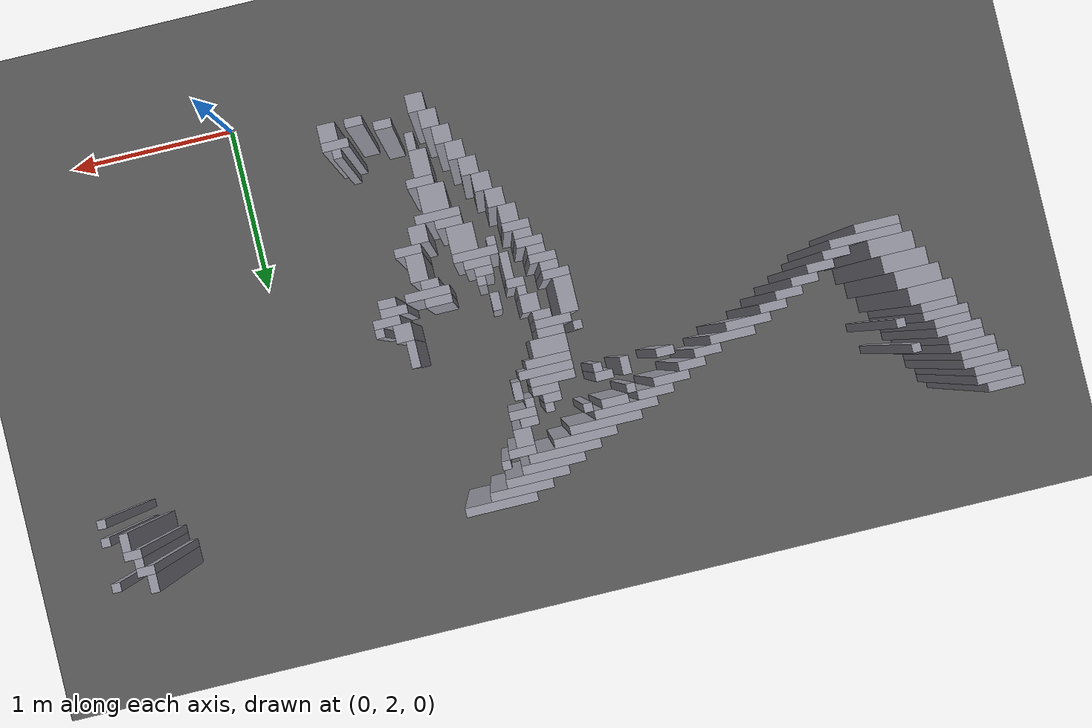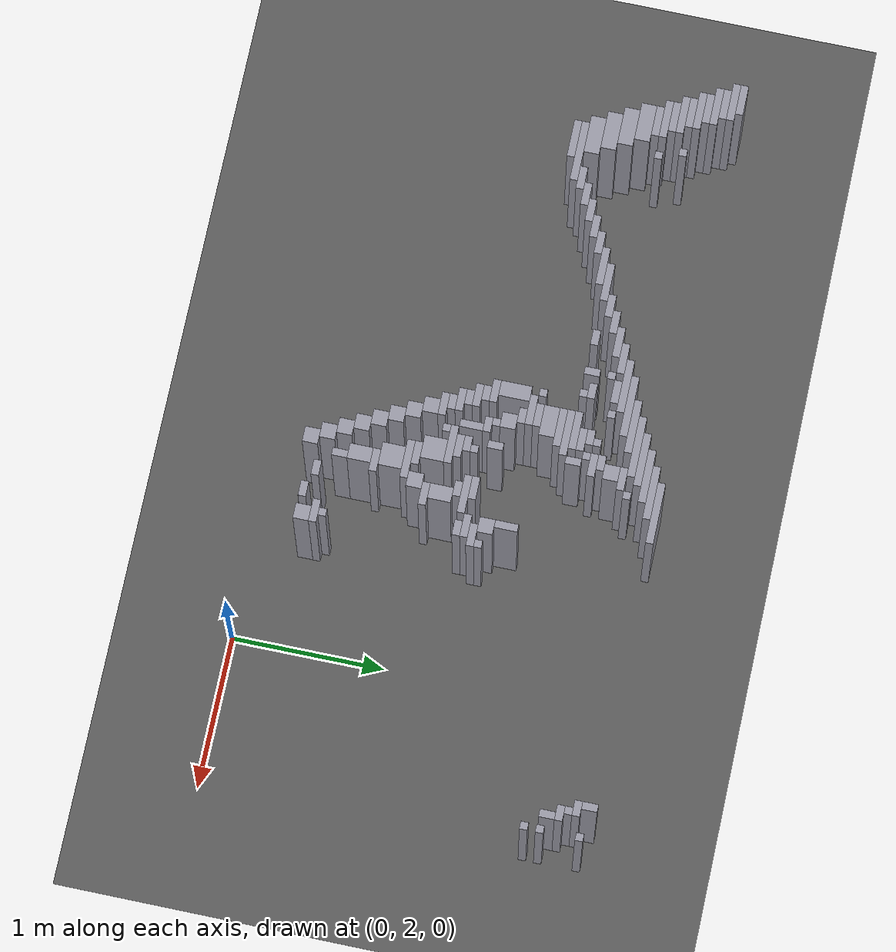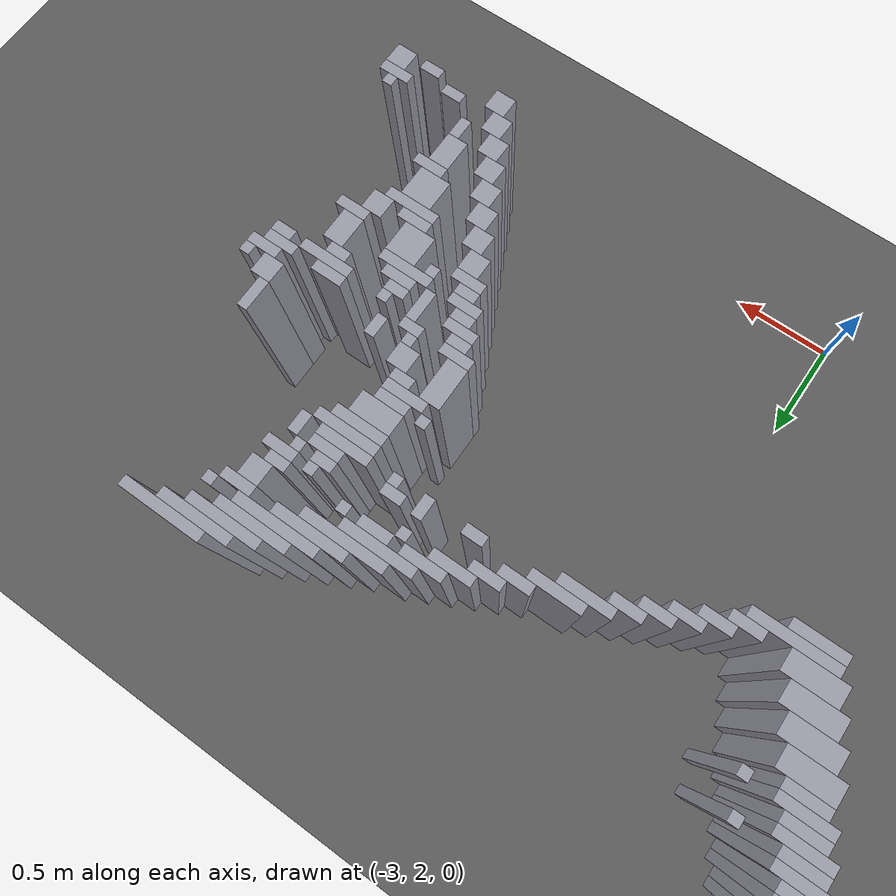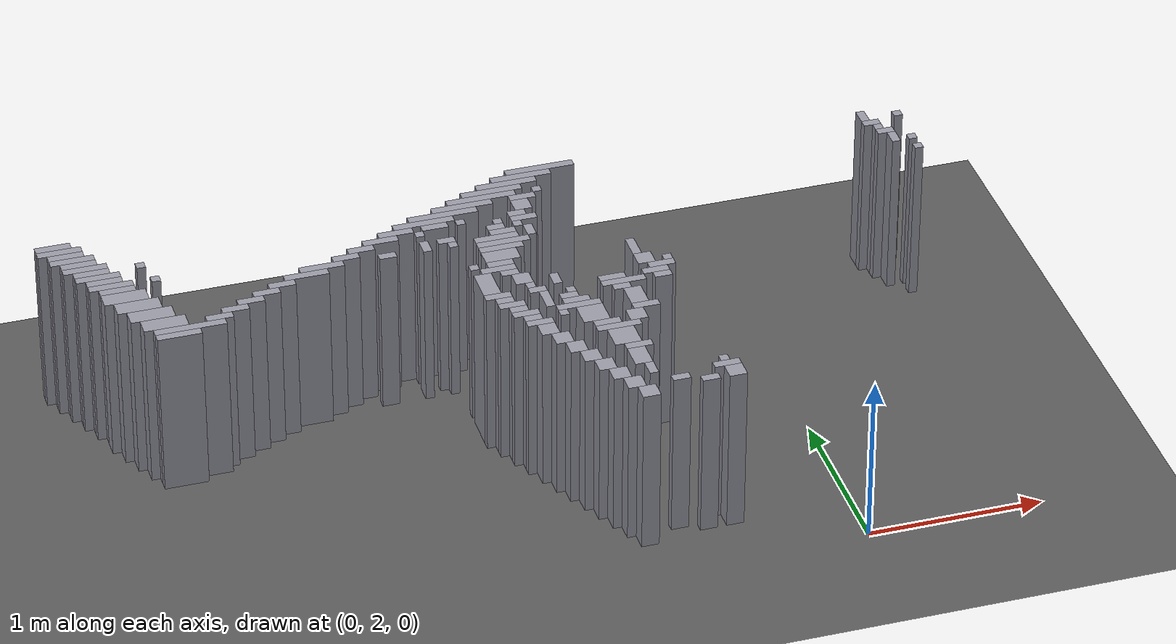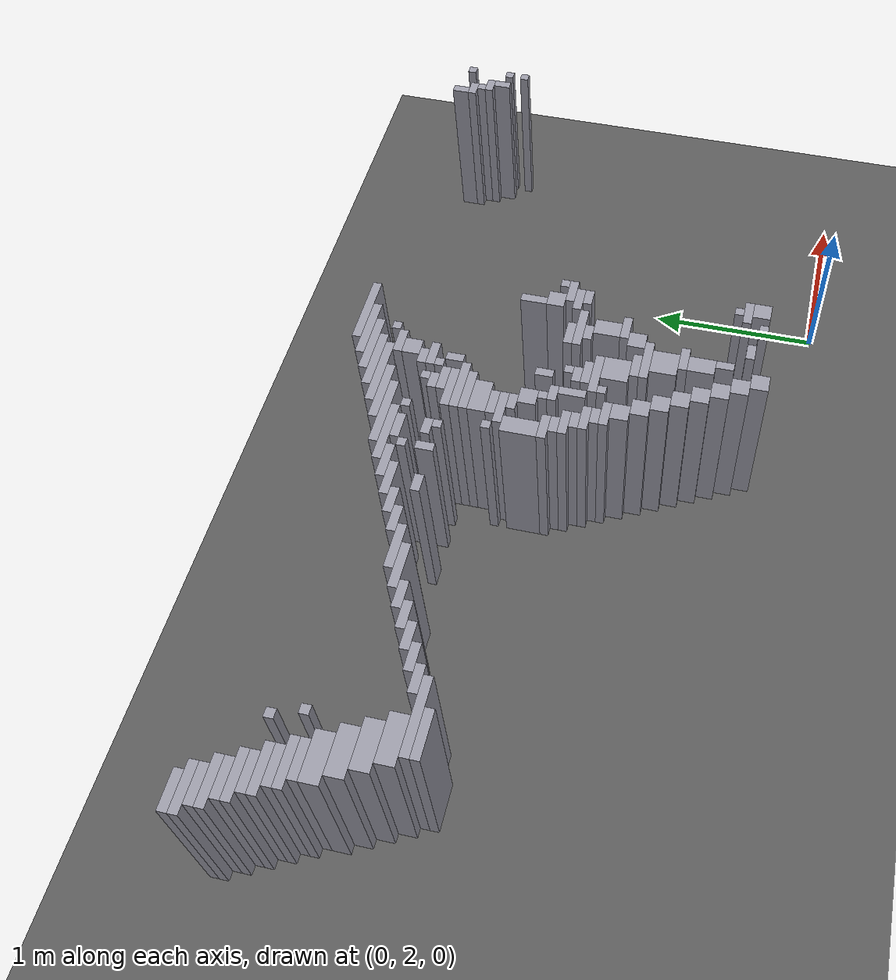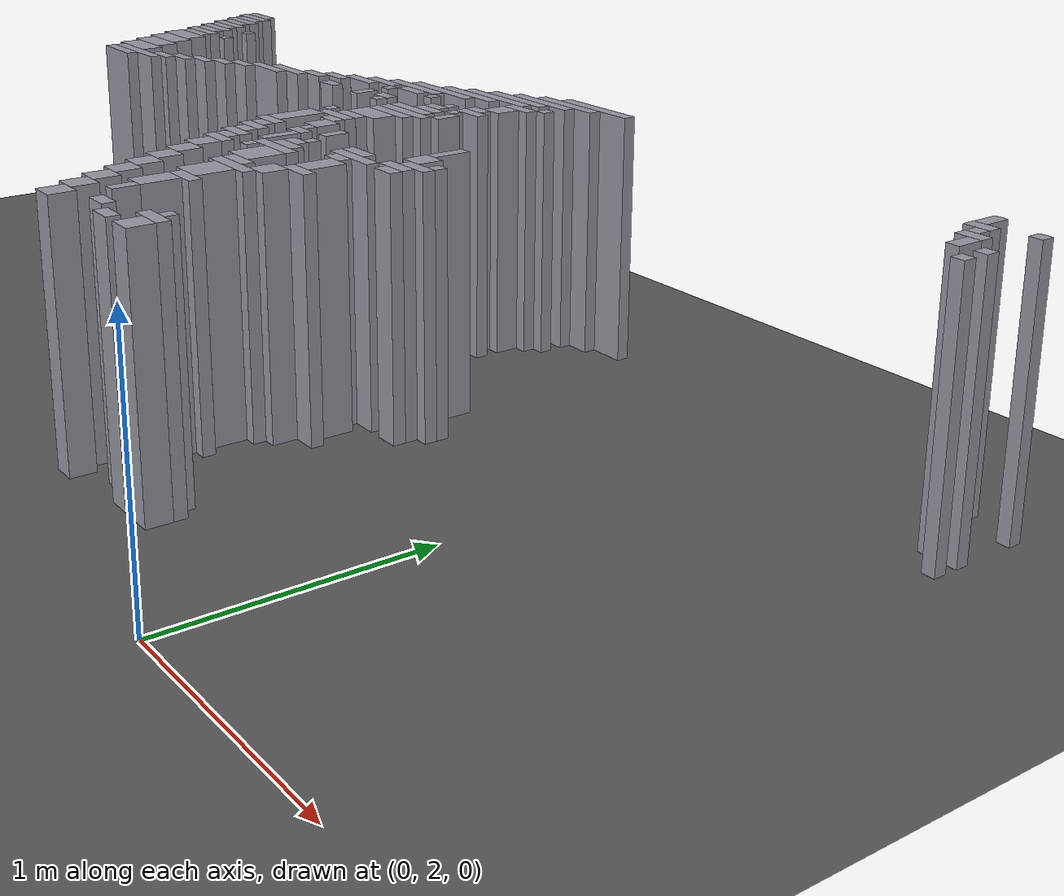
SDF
<sdf version="1.8">
 <world name="dimi">
  <model name="ground">
   <static>true</static>
   <link name="ground_link">
    <collision name="c"><geometry><plane><normal>0 0 1</normal><size>60 60</size></plane></geometry></collision>
    <visual name="v">
     <geometry><plane><normal>0 0 1</normal><size>60 60</size></plane></geometry>
     <material><ambient>0.3 0.3 0.3 1</ambient><diffuse>0.35 0.35 0.35 1</diffuse></material>
    </visual>
   </link>
  </model>
  <model name="walls">
   <static>true</static>
   <link name="wall_727">
    <pose>-3.9170 4.5200 0.5000 0 0 0</pose>
    <collision name="c"><geometry><box><size>0.2000 0.0500 1.0000</size></box></geometry></collision>
    <visual name="v">
     <geometry><box><size>0.2000 0.0500 1.0000</size></box></geometry>
     <material><ambient>0.5 0.5 0.55 1</ambient><diffuse>0.6 0.6 0.65 1</diffuse></material>
    </visual>
   </link>
   <link name="wall_728">
    <pose>-1.1170 4.5200 0.5000 0 0 0</pose>
    <collision name="c"><geometry><box><size>0.4000 0.0500 1.0000</size></box></geometry></collision>
    <visual name="v">
     <geometry><box><size>0.4000 0.0500 1.0000</size></box></geometry>
     <material><ambient>0.5 0.5 0.55 1</ambient><diffuse>0.6 0.6 0.65 1</diffuse></material>
    </visual>
   </link>
   <link name="wall_729">
    <pose>0.8080 4.4950 0.5000 0 0 0</pose>
    <collision name="c"><geometry><box><size>0.0500 0.1000 1.0000</size></box></geometry></collision>
    <visual name="v">
     <geometry><box><size>0.0500 0.1000 1.0000</size></box></geometry>
     <material><ambient>0.5 0.5 0.55 1</ambient><diffuse>0.6 0.6 0.65 1</diffuse></material>
    </visual>
   </link>
   <link name="wall_738">
    <pose>-3.8920 4.4700 0.5000 0 0 0</pose>
    <collision name="c"><geometry><box><size>0.2500 0.0500 1.0000</size></box></geometry></collision>
    <visual name="v">
     <geometry><box><size>0.2500 0.0500 1.0000</size></box></geometry>
     <material><ambient>0.5 0.5 0.55 1</ambient><diffuse>0.6 0.6 0.65 1</diffuse></material>
    </visual>
   </link>
   <link name="wall_739">
    <pose>-1.2420 4.4700 0.5000 0 0 0</pose>
    <collision name="c"><geometry><box><size>0.3500 0.0500 1.0000</size></box></geometry></collision>
    <visual name="v">
     <geometry><box><size>0.3500 0.0500 1.0000</size></box></geometry>
     <material><ambient>0.5 0.5 0.55 1</ambient><diffuse>0.6 0.6 0.65 1</diffuse></material>
    </visual>
   </link>
   <link name="wall_740">
    <pose>1.0080 4.4700 0.5000 0 0 0</pose>
    <collision name="c"><geometry><box><size>0.0500 0.0500 1.0000</size></box></geometry></collision>
    <visual name="v">
     <geometry><box><size>0.0500 0.0500 1.0000</size></box></geometry>
     <material><ambient>0.5 0.5 0.55 1</ambient><diffuse>0.6 0.6 0.65 1</diffuse></material>
    </visual>
   </link>
   <link name="wall_745">
    <pose>-3.8670 4.4200 0.5000 0 0 0</pose>
    <collision name="c"><geometry><box><size>0.2000 0.0500 1.0000</size></box></geometry></collision>
    <visual name="v">
     <geometry><box><size>0.2000 0.0500 1.0000</size></box></geometry>
     <material><ambient>0.5 0.5 0.55 1</ambient><diffuse>0.6 0.6 0.65 1</diffuse></material>
    </visual>
   </link>
   <link name="wall_746">
    <pose>-1.3420 4.4200 0.5000 0 0 0</pose>
    <collision name="c"><geometry><box><size>0.3500 0.0500 1.0000</size></box></geometry></collision>
    <visual name="v">
     <geometry><box><size>0.3500 0.0500 1.0000</size></box></geometry>
     <material><ambient>0.5 0.5 0.55 1</ambient><diffuse>0.6 0.6 0.65 1</diffuse></material>
    </visual>
   </link>
   <link name="wall_747">
    <pose>0.8330 4.4200 0.5000 0 0 0</pose>
    <collision name="c"><geometry><box><size>0.1000 0.0500 1.0000</size></box></geometry></collision>
    <visual name="v">
     <geometry><box><size>0.1000 0.0500 1.0000</size></box></geometry>
     <material><ambient>0.5 0.5 0.55 1</ambient><diffuse>0.6 0.6 0.65 1</diffuse></material>
    </visual>
   </link>
   <link name="wall_758">
    <pose>-3.8420 4.3700 0.5000 0 0 0</pose>
    <collision name="c"><geometry><box><size>0.2500 0.0500 1.0000</size></box></geometry></collision>
    <visual name="v">
     <geometry><box><size>0.2500 0.0500 1.0000</size></box></geometry>
     <material><ambient>0.5 0.5 0.55 1</ambient><diffuse>0.6 0.6 0.65 1</diffuse></material>
    </visual>
   </link>
   <link name="wall_759">
    <pose>-1.4420 4.3700 0.5000 0 0 0</pose>
    <collision name="c"><geometry><box><size>0.3500 0.0500 1.0000</size></box></geometry></collision>
    <visual name="v">
     <geometry><box><size>0.3500 0.0500 1.0000</size></box></geometry>
     <material><ambient>0.5 0.5 0.55 1</ambient><diffuse>0.6 0.6 0.65 1</diffuse></material>
    </visual>
   </link>
   <link name="wall_760">
    <pose>0.8580 4.3700 0.5000 0 0 0</pose>
    <collision name="c"><geometry><box><size>0.0500 0.0500 1.0000</size></box></geometry></collision>
    <visual name="v">
     <geometry><box><size>0.0500 0.0500 1.0000</size></box></geometry>
     <material><ambient>0.5 0.5 0.55 1</ambient><diffuse>0.6 0.6 0.65 1</diffuse></material>
    </visual>
   </link>
   <link name="wall_767">
    <pose>-3.8170 4.3200 0.5000 0 0 0</pose>
    <collision name="c"><geometry><box><size>0.2000 0.0500 1.0000</size></box></geometry></collision>
    <visual name="v">
     <geometry><box><size>0.2000 0.0500 1.0000</size></box></geometry>
     <material><ambient>0.5 0.5 0.55 1</ambient><diffuse>0.6 0.6 0.65 1</diffuse></material>
    </visual>
   </link>
   <link name="wall_768">
    <pose>-1.5170 4.3200 0.5000 0 0 0</pose>
    <collision name="c"><geometry><box><size>0.4000 0.0500 1.0000</size></box></geometry></collision>
    <visual name="v">
     <geometry><box><size>0.4000 0.0500 1.0000</size></box></geometry>
     <material><ambient>0.5 0.5 0.55 1</ambient><diffuse>0.6 0.6 0.65 1</diffuse></material>
    </visual>
   </link>
   <link name="wall_769">
    <pose>-1.1920 4.3200 0.5000 0 0 0</pose>
    <collision name="c"><geometry><box><size>0.0500 0.0500 1.0000</size></box></geometry></collision>
    <visual name="v">
     <geometry><box><size>0.0500 0.0500 1.0000</size></box></geometry>
     <material><ambient>0.5 0.5 0.55 1</ambient><diffuse>0.6 0.6 0.65 1</diffuse></material>
    </visual>
   </link>
   <link name="wall_770">
    <pose>0.8830 4.3200 0.5000 0 0 0</pose>
    <collision name="c"><geometry><box><size>0.1000 0.0500 1.0000</size></box></geometry></collision>
    <visual name="v">
     <geometry><box><size>0.1000 0.0500 1.0000</size></box></geometry>
     <material><ambient>0.5 0.5 0.55 1</ambient><diffuse>0.6 0.6 0.65 1</diffuse></material>
    </visual>
   </link>
   <link name="wall_777">
    <pose>-3.7920 4.2700 0.5000 0 0 0</pose>
    <collision name="c"><geometry><box><size>0.2500 0.0500 1.0000</size></box></geometry></collision>
    <visual name="v">
     <geometry><box><size>0.2500 0.0500 1.0000</size></box></geometry>
     <material><ambient>0.5 0.5 0.55 1</ambient><diffuse>0.6 0.6 0.65 1</diffuse></material>
    </visual>
   </link>
   <link name="wall_778">
    <pose>-1.6420 4.2700 0.5000 0 0 0</pose>
    <collision name="c"><geometry><box><size>0.3500 0.0500 1.0000</size></box></geometry></collision>
    <visual name="v">
     <geometry><box><size>0.3500 0.0500 1.0000</size></box></geometry>
     <material><ambient>0.5 0.5 0.55 1</ambient><diffuse>0.6 0.6 0.65 1</diffuse></material>
    </visual>
   </link>
   <link name="wall_779">
    <pose>-1.2920 4.2700 0.5000 0 0 0</pose>
    <collision name="c"><geometry><box><size>0.1500 0.0500 1.0000</size></box></geometry></collision>
    <visual name="v">
     <geometry><box><size>0.1500 0.0500 1.0000</size></box></geometry>
     <material><ambient>0.5 0.5 0.55 1</ambient><diffuse>0.6 0.6 0.65 1</diffuse></material>
    </visual>
   </link>
   <link name="wall_780">
    <pose>0.9080 4.2450 0.5000 0 0 0</pose>
    <collision name="c"><geometry><box><size>0.0500 0.1000 1.0000</size></box></geometry></collision>
    <visual name="v">
     <geometry><box><size>0.0500 0.1000 1.0000</size></box></geometry>
     <material><ambient>0.5 0.5 0.55 1</ambient><diffuse>0.6 0.6 0.65 1</diffuse></material>
    </visual>
   </link>
   <link name="wall_787">
    <pose>-3.7670 4.2200 0.5000 0 0 0</pose>
    <collision name="c"><geometry><box><size>0.2000 0.0500 1.0000</size></box></geometry></collision>
    <visual name="v">
     <geometry><box><size>0.2000 0.0500 1.0000</size></box></geometry>
     <material><ambient>0.5 0.5 0.55 1</ambient><diffuse>0.6 0.6 0.65 1</diffuse></material>
    </visual>
   </link>
   <link name="wall_788">
    <pose>-3.4920 4.2200 0.5000 0 0 0</pose>
    <collision name="c"><geometry><box><size>0.0500 0.0500 1.0000</size></box></geometry></collision>
    <visual name="v">
     <geometry><box><size>0.0500 0.0500 1.0000</size></box></geometry>
     <material><ambient>0.5 0.5 0.55 1</ambient><diffuse>0.6 0.6 0.65 1</diffuse></material>
    </visual>
   </link>
   <link name="wall_789">
    <pose>-1.7670 4.2200 0.5000 0 0 0</pose>
    <collision name="c"><geometry><box><size>0.4000 0.0500 1.0000</size></box></geometry></collision>
    <visual name="v">
     <geometry><box><size>0.4000 0.0500 1.0000</size></box></geometry>
     <material><ambient>0.5 0.5 0.55 1</ambient><diffuse>0.6 0.6 0.65 1</diffuse></material>
    </visual>
   </link>
   <link name="wall_790">
    <pose>-1.3170 4.1950 0.5000 0 0 0</pose>
    <collision name="c"><geometry><box><size>0.1000 0.1000 1.0000</size></box></geometry></collision>
    <visual name="v">
     <geometry><box><size>0.1000 0.1000 1.0000</size></box></geometry>
     <material><ambient>0.5 0.5 0.55 1</ambient><diffuse>0.6 0.6 0.65 1</diffuse></material>
    </visual>
   </link>
   <link name="wall_791">
    <pose>1.0080 4.2200 0.5000 0 0 0</pose>
    <collision name="c"><geometry><box><size>0.0500 0.0500 1.0000</size></box></geometry></collision>
    <visual name="v">
     <geometry><box><size>0.0500 0.0500 1.0000</size></box></geometry>
     <material><ambient>0.5 0.5 0.55 1</ambient><diffuse>0.6 0.6 0.65 1</diffuse></material>
    </visual>
   </link>
   <link name="wall_796">
    <pose>-3.7420 4.1700 0.5000 0 0 0</pose>
    <collision name="c"><geometry><box><size>0.2500 0.0500 1.0000</size></box></geometry></collision>
    <visual name="v">
     <geometry><box><size>0.2500 0.0500 1.0000</size></box></geometry>
     <material><ambient>0.5 0.5 0.55 1</ambient><diffuse>0.6 0.6 0.65 1</diffuse></material>
    </visual>
   </link>
   <link name="wall_797">
    <pose>-1.8920 4.1700 0.5000 0 0 0</pose>
    <collision name="c"><geometry><box><size>0.3500 0.0500 1.0000</size></box></geometry></collision>
    <visual name="v">
     <geometry><box><size>0.3500 0.0500 1.0000</size></box></geometry>
     <material><ambient>0.5 0.5 0.55 1</ambient><diffuse>0.6 0.6 0.65 1</diffuse></material>
    </visual>
   </link>
   <link name="wall_804">
    <pose>-3.7170 4.1200 0.5000 0 0 0</pose>
    <collision name="c"><geometry><box><size>0.2000 0.0500 1.0000</size></box></geometry></collision>
    <visual name="v">
     <geometry><box><size>0.2000 0.0500 1.0000</size></box></geometry>
     <material><ambient>0.5 0.5 0.55 1</ambient><diffuse>0.6 0.6 0.65 1</diffuse></material>
    </visual>
   </link>
   <link name="wall_805">
    <pose>-2.0670 4.1200 0.5000 0 0 0</pose>
    <collision name="c"><geometry><box><size>0.2000 0.0500 1.0000</size></box></geometry></collision>
    <visual name="v">
     <geometry><box><size>0.2000 0.0500 1.0000</size></box></geometry>
     <material><ambient>0.5 0.5 0.55 1</ambient><diffuse>0.6 0.6 0.65 1</diffuse></material>
    </visual>
   </link>
   <link name="wall_806">
    <pose>-1.8420 4.1200 0.5000 0 0 0</pose>
    <collision name="c"><geometry><box><size>0.1500 0.0500 1.0000</size></box></geometry></collision>
    <visual name="v">
     <geometry><box><size>0.1500 0.0500 1.0000</size></box></geometry>
     <material><ambient>0.5 0.5 0.55 1</ambient><diffuse>0.6 0.6 0.65 1</diffuse></material>
    </visual>
   </link>
   <link name="wall_807">
    <pose>-1.6920 4.1200 0.5000 0 0 0</pose>
    <collision name="c"><geometry><box><size>0.0500 0.0500 1.0000</size></box></geometry></collision>
    <visual name="v">
     <geometry><box><size>0.0500 0.0500 1.0000</size></box></geometry>
     <material><ambient>0.5 0.5 0.55 1</ambient><diffuse>0.6 0.6 0.65 1</diffuse></material>
    </visual>
   </link>
   <link name="wall_808">
    <pose>-1.3670 4.1200 0.5000 0 0 0</pose>
    <collision name="c"><geometry><box><size>0.1000 0.0500 1.0000</size></box></geometry></collision>
    <visual name="v">
     <geometry><box><size>0.1000 0.0500 1.0000</size></box></geometry>
     <material><ambient>0.5 0.5 0.55 1</ambient><diffuse>0.6 0.6 0.65 1</diffuse></material>
    </visual>
   </link>
   <link name="wall_809">
    <pose>1.0080 4.1200 0.5000 0 0 0</pose>
    <collision name="c"><geometry><box><size>0.0500 0.0500 1.0000</size></box></geometry></collision>
    <visual name="v">
     <geometry><box><size>0.0500 0.0500 1.0000</size></box></geometry>
     <material><ambient>0.5 0.5 0.55 1</ambient><diffuse>0.6 0.6 0.65 1</diffuse></material>
    </visual>
   </link>
   <link name="wall_814">
    <pose>-3.6920 4.0700 0.5000 0 0 0</pose>
    <collision name="c"><geometry><box><size>0.2500 0.0500 1.0000</size></box></geometry></collision>
    <visual name="v">
     <geometry><box><size>0.2500 0.0500 1.0000</size></box></geometry>
     <material><ambient>0.5 0.5 0.55 1</ambient><diffuse>0.6 0.6 0.65 1</diffuse></material>
    </visual>
   </link>
   <link name="wall_815">
    <pose>-3.4420 4.0700 0.5000 0 0 0</pose>
    <collision name="c"><geometry><box><size>0.0500 0.0500 1.0000</size></box></geometry></collision>
    <visual name="v">
     <geometry><box><size>0.0500 0.0500 1.0000</size></box></geometry>
     <material><ambient>0.5 0.5 0.55 1</ambient><diffuse>0.6 0.6 0.65 1</diffuse></material>
    </visual>
   </link>
   <link name="wall_816">
    <pose>-2.1670 4.0700 0.5000 0 0 0</pose>
    <collision name="c"><geometry><box><size>0.2000 0.0500 1.0000</size></box></geometry></collision>
    <visual name="v">
     <geometry><box><size>0.2000 0.0500 1.0000</size></box></geometry>
     <material><ambient>0.5 0.5 0.55 1</ambient><diffuse>0.6 0.6 0.65 1</diffuse></material>
    </visual>
   </link>
   <link name="wall_817">
    <pose>-1.9420 4.0700 0.5000 0 0 0</pose>
    <collision name="c"><geometry><box><size>0.0500 0.0500 1.0000</size></box></geometry></collision>
    <visual name="v">
     <geometry><box><size>0.0500 0.0500 1.0000</size></box></geometry>
     <material><ambient>0.5 0.5 0.55 1</ambient><diffuse>0.6 0.6 0.65 1</diffuse></material>
    </visual>
   </link>
   <link name="wall_818">
    <pose>-1.4920 4.0700 0.5000 0 0 0</pose>
    <collision name="c"><geometry><box><size>0.0500 0.0500 1.0000</size></box></geometry></collision>
    <visual name="v">
     <geometry><box><size>0.0500 0.0500 1.0000</size></box></geometry>
     <material><ambient>0.5 0.5 0.55 1</ambient><diffuse>0.6 0.6 0.65 1</diffuse></material>
    </visual>
   </link>
   <link name="wall_819">
    <pose>-1.3420 4.0700 0.5000 0 0 0</pose>
    <collision name="c"><geometry><box><size>0.1500 0.0500 1.0000</size></box></geometry></collision>
    <visual name="v">
     <geometry><box><size>0.1500 0.0500 1.0000</size></box></geometry>
     <material><ambient>0.5 0.5 0.55 1</ambient><diffuse>0.6 0.6 0.65 1</diffuse></material>
    </visual>
   </link>
   <link name="wall_827">
    <pose>-3.6670 4.0200 0.5000 0 0 0</pose>
    <collision name="c"><geometry><box><size>0.2000 0.0500 1.0000</size></box></geometry></collision>
    <visual name="v">
     <geometry><box><size>0.2000 0.0500 1.0000</size></box></geometry>
     <material><ambient>0.5 0.5 0.55 1</ambient><diffuse>0.6 0.6 0.65 1</diffuse></material>
    </visual>
   </link>
   <link name="wall_828">
    <pose>-2.2920 4.0200 0.5000 0 0 0</pose>
    <collision name="c"><geometry><box><size>0.1500 0.0500 1.0000</size></box></geometry></collision>
    <visual name="v">
     <geometry><box><size>0.1500 0.0500 1.0000</size></box></geometry>
     <material><ambient>0.5 0.5 0.55 1</ambient><diffuse>0.6 0.6 0.65 1</diffuse></material>
    </visual>
   </link>
   <link name="wall_829">
    <pose>-1.5170 4.0200 0.5000 0 0 0</pose>
    <collision name="c"><geometry><box><size>0.1000 0.0500 1.0000</size></box></geometry></collision>
    <visual name="v">
     <geometry><box><size>0.1000 0.0500 1.0000</size></box></geometry>
     <material><ambient>0.5 0.5 0.55 1</ambient><diffuse>0.6 0.6 0.65 1</diffuse></material>
    </visual>
   </link>
   <link name="wall_830">
    <pose>-1.3920 4.0200 0.5000 0 0 0</pose>
    <collision name="c"><geometry><box><size>0.0500 0.0500 1.0000</size></box></geometry></collision>
    <visual name="v">
     <geometry><box><size>0.0500 0.0500 1.0000</size></box></geometry>
     <material><ambient>0.5 0.5 0.55 1</ambient><diffuse>0.6 0.6 0.65 1</diffuse></material>
    </visual>
   </link>
   <link name="wall_837">
    <pose>-3.6420 3.9450 0.5000 0 0 0</pose>
    <collision name="c"><geometry><box><size>0.2500 0.1000 1.0000</size></box></geometry></collision>
    <visual name="v">
     <geometry><box><size>0.2500 0.1000 1.0000</size></box></geometry>
     <material><ambient>0.5 0.5 0.55 1</ambient><diffuse>0.6 0.6 0.65 1</diffuse></material>
    </visual>
   </link>
   <link name="wall_838">
    <pose>-2.3920 3.9700 0.5000 0 0 0</pose>
    <collision name="c"><geometry><box><size>0.1500 0.0500 1.0000</size></box></geometry></collision>
    <visual name="v">
     <geometry><box><size>0.1500 0.0500 1.0000</size></box></geometry>
     <material><ambient>0.5 0.5 0.55 1</ambient><diffuse>0.6 0.6 0.65 1</diffuse></material>
    </visual>
   </link>
   <link name="wall_839">
    <pose>-1.9420 3.9450 0.5000 0 0 0</pose>
    <collision name="c"><geometry><box><size>0.0500 0.1000 1.0000</size></box></geometry></collision>
    <visual name="v">
     <geometry><box><size>0.0500 0.1000 1.0000</size></box></geometry>
     <material><ambient>0.5 0.5 0.55 1</ambient><diffuse>0.6 0.6 0.65 1</diffuse></material>
    </visual>
   </link>
   <link name="wall_840">
    <pose>-1.8170 3.9700 0.5000 0 0 0</pose>
    <collision name="c"><geometry><box><size>0.1000 0.0500 1.0000</size></box></geometry></collision>
    <visual name="v">
     <geometry><box><size>0.1000 0.0500 1.0000</size></box></geometry>
     <material><ambient>0.5 0.5 0.55 1</ambient><diffuse>0.6 0.6 0.65 1</diffuse></material>
    </visual>
   </link>
   <link name="wall_841">
    <pose>-1.4920 3.9700 0.5000 0 0 0</pose>
    <collision name="c"><geometry><box><size>0.1500 0.0500 1.0000</size></box></geometry></collision>
    <visual name="v">
     <geometry><box><size>0.1500 0.0500 1.0000</size></box></geometry>
     <material><ambient>0.5 0.5 0.55 1</ambient><diffuse>0.6 0.6 0.65 1</diffuse></material>
    </visual>
   </link>
   <link name="wall_842">
    <pose>-1.3420 3.9450 0.5000 0 0 0</pose>
    <collision name="c"><geometry><box><size>0.0500 0.1000 1.0000</size></box></geometry></collision>
    <visual name="v">
     <geometry><box><size>0.0500 0.1000 1.0000</size></box></geometry>
     <material><ambient>0.5 0.5 0.55 1</ambient><diffuse>0.6 0.6 0.65 1</diffuse></material>
    </visual>
   </link>
   <link name="wall_851">
    <pose>-2.5420 3.9200 0.5000 0 0 0</pose>
    <collision name="c"><geometry><box><size>0.2500 0.0500 1.0000</size></box></geometry></collision>
    <visual name="v">
     <geometry><box><size>0.2500 0.0500 1.0000</size></box></geometry>
     <material><ambient>0.5 0.5 0.55 1</ambient><diffuse>0.6 0.6 0.65 1</diffuse></material>
    </visual>
   </link>
   <link name="wall_852">
    <pose>-2.1670 3.9200 0.5000 0 0 0</pose>
    <collision name="c"><geometry><box><size>0.1000 0.0500 1.0000</size></box></geometry></collision>
    <visual name="v">
     <geometry><box><size>0.1000 0.0500 1.0000</size></box></geometry>
     <material><ambient>0.5 0.5 0.55 1</ambient><diffuse>0.6 0.6 0.65 1</diffuse></material>
    </visual>
   </link>
   <link name="wall_853">
    <pose>-1.7920 3.9200 0.5000 0 0 0</pose>
    <collision name="c"><geometry><box><size>0.0500 0.0500 1.0000</size></box></geometry></collision>
    <visual name="v">
     <geometry><box><size>0.0500 0.0500 1.0000</size></box></geometry>
     <material><ambient>0.5 0.5 0.55 1</ambient><diffuse>0.6 0.6 0.65 1</diffuse></material>
    </visual>
   </link>
   <link name="wall_854">
    <pose>-1.5420 3.9200 0.5000 0 0 0</pose>
    <collision name="c"><geometry><box><size>0.2500 0.0500 1.0000</size></box></geometry></collision>
    <visual name="v">
     <geometry><box><size>0.2500 0.0500 1.0000</size></box></geometry>
     <material><ambient>0.5 0.5 0.55 1</ambient><diffuse>0.6 0.6 0.65 1</diffuse></material>
    </visual>
   </link>
   <link name="wall_861">
    <pose>-3.5920 3.8450 0.5000 0 0 0</pose>
    <collision name="c"><geometry><box><size>0.2500 0.1000 1.0000</size></box></geometry></collision>
    <visual name="v">
     <geometry><box><size>0.2500 0.1000 1.0000</size></box></geometry>
     <material><ambient>0.5 0.5 0.55 1</ambient><diffuse>0.6 0.6 0.65 1</diffuse></material>
    </visual>
   </link>
   <link name="wall_862">
    <pose>-2.6420 3.8700 0.5000 0 0 0</pose>
    <collision name="c"><geometry><box><size>0.2500 0.0500 1.0000</size></box></geometry></collision>
    <visual name="v">
     <geometry><box><size>0.2500 0.0500 1.0000</size></box></geometry>
     <material><ambient>0.5 0.5 0.55 1</ambient><diffuse>0.6 0.6 0.65 1</diffuse></material>
    </visual>
   </link>
   <link name="wall_863">
    <pose>-1.5170 3.8700 0.5000 0 0 0</pose>
    <collision name="c"><geometry><box><size>0.3000 0.0500 1.0000</size></box></geometry></collision>
    <visual name="v">
     <geometry><box><size>0.3000 0.0500 1.0000</size></box></geometry>
     <material><ambient>0.5 0.5 0.55 1</ambient><diffuse>0.6 0.6 0.65 1</diffuse></material>
    </visual>
   </link>
   <link name="wall_870">
    <pose>-2.7920 3.8200 0.5000 0 0 0</pose>
    <collision name="c"><geometry><box><size>0.1500 0.0500 1.0000</size></box></geometry></collision>
    <visual name="v">
     <geometry><box><size>0.1500 0.0500 1.0000</size></box></geometry>
     <material><ambient>0.5 0.5 0.55 1</ambient><diffuse>0.6 0.6 0.65 1</diffuse></material>
    </visual>
   </link>
   <link name="wall_871">
    <pose>-1.5420 3.8200 0.5000 0 0 0</pose>
    <collision name="c"><geometry><box><size>0.2500 0.0500 1.0000</size></box></geometry></collision>
    <visual name="v">
     <geometry><box><size>0.2500 0.0500 1.0000</size></box></geometry>
     <material><ambient>0.5 0.5 0.55 1</ambient><diffuse>0.6 0.6 0.65 1</diffuse></material>
    </visual>
   </link>
   <link name="wall_877">
    <pose>-3.5420 3.7450 0.5000 0 0 0</pose>
    <collision name="c"><geometry><box><size>0.2500 0.1000 1.0000</size></box></geometry></collision>
    <visual name="v">
     <geometry><box><size>0.2500 0.1000 1.0000</size></box></geometry>
     <material><ambient>0.5 0.5 0.55 1</ambient><diffuse>0.6 0.6 0.65 1</diffuse></material>
    </visual>
   </link>
   <link name="wall_878">
    <pose>-2.8920 3.7700 0.5000 0 0 0</pose>
    <collision name="c"><geometry><box><size>0.1500 0.0500 1.0000</size></box></geometry></collision>
    <visual name="v">
     <geometry><box><size>0.1500 0.0500 1.0000</size></box></geometry>
     <material><ambient>0.5 0.5 0.55 1</ambient><diffuse>0.6 0.6 0.65 1</diffuse></material>
    </visual>
   </link>
   <link name="wall_879">
    <pose>-1.5670 3.7450 0.5000 0 0 0</pose>
    <collision name="c"><geometry><box><size>0.2000 0.1000 1.0000</size></box></geometry></collision>
    <visual name="v">
     <geometry><box><size>0.2000 0.1000 1.0000</size></box></geometry>
     <material><ambient>0.5 0.5 0.55 1</ambient><diffuse>0.6 0.6 0.65 1</diffuse></material>
    </visual>
   </link>
   <link name="wall_887">
    <pose>-2.9920 3.7200 0.5000 0 0 0</pose>
    <collision name="c"><geometry><box><size>0.1500 0.0500 1.0000</size></box></geometry></collision>
    <visual name="v">
     <geometry><box><size>0.1500 0.0500 1.0000</size></box></geometry>
     <material><ambient>0.5 0.5 0.55 1</ambient><diffuse>0.6 0.6 0.65 1</diffuse></material>
    </visual>
   </link>
   <link name="wall_893">
    <pose>-3.4920 3.6450 0.5000 0 0 0</pose>
    <collision name="c"><geometry><box><size>0.2500 0.1000 1.0000</size></box></geometry></collision>
    <visual name="v">
     <geometry><box><size>0.2500 0.1000 1.0000</size></box></geometry>
     <material><ambient>0.5 0.5 0.55 1</ambient><diffuse>0.6 0.6 0.65 1</diffuse></material>
    </visual>
   </link>
   <link name="wall_894">
    <pose>-3.0920 3.6700 0.5000 0 0 0</pose>
    <collision name="c"><geometry><box><size>0.1500 0.0500 1.0000</size></box></geometry></collision>
    <visual name="v">
     <geometry><box><size>0.1500 0.0500 1.0000</size></box></geometry>
     <material><ambient>0.5 0.5 0.55 1</ambient><diffuse>0.6 0.6 0.65 1</diffuse></material>
    </visual>
   </link>
   <link name="wall_895">
    <pose>-1.7420 3.6700 0.5000 0 0 0</pose>
    <collision name="c"><geometry><box><size>0.0500 0.0500 1.0000</size></box></geometry></collision>
    <visual name="v">
     <geometry><box><size>0.0500 0.0500 1.0000</size></box></geometry>
     <material><ambient>0.5 0.5 0.55 1</ambient><diffuse>0.6 0.6 0.65 1</diffuse></material>
    </visual>
   </link>
   <link name="wall_896">
    <pose>-1.5920 3.6700 0.5000 0 0 0</pose>
    <collision name="c"><geometry><box><size>0.1500 0.0500 1.0000</size></box></geometry></collision>
    <visual name="v">
     <geometry><box><size>0.1500 0.0500 1.0000</size></box></geometry>
     <material><ambient>0.5 0.5 0.55 1</ambient><diffuse>0.6 0.6 0.65 1</diffuse></material>
    </visual>
   </link>
   <link name="wall_897">
    <pose>-0.8420 3.6200 0.5000 0 0 0</pose>
    <collision name="c"><geometry><box><size>0.0500 0.1500 1.0000</size></box></geometry></collision>
    <visual name="v">
     <geometry><box><size>0.0500 0.1500 1.0000</size></box></geometry>
     <material><ambient>0.5 0.5 0.55 1</ambient><diffuse>0.6 0.6 0.65 1</diffuse></material>
    </visual>
   </link>
   <link name="wall_903">
    <pose>-3.1920 3.6200 0.5000 0 0 0</pose>
    <collision name="c"><geometry><box><size>0.1500 0.0500 1.0000</size></box></geometry></collision>
    <visual name="v">
     <geometry><box><size>0.1500 0.0500 1.0000</size></box></geometry>
     <material><ambient>0.5 0.5 0.55 1</ambient><diffuse>0.6 0.6 0.65 1</diffuse></material>
    </visual>
   </link>
   <link name="wall_904">
    <pose>-1.6170 3.6200 0.5000 0 0 0</pose>
    <collision name="c"><geometry><box><size>0.2000 0.0500 1.0000</size></box></geometry></collision>
    <visual name="v">
     <geometry><box><size>0.2000 0.0500 1.0000</size></box></geometry>
     <material><ambient>0.5 0.5 0.55 1</ambient><diffuse>0.6 0.6 0.65 1</diffuse></material>
    </visual>
   </link>
   <link name="wall_910">
    <pose>-3.3670 3.5700 0.5000 0 0 0</pose>
    <collision name="c"><geometry><box><size>0.4000 0.0500 1.0000</size></box></geometry></collision>
    <visual name="v">
     <geometry><box><size>0.4000 0.0500 1.0000</size></box></geometry>
     <material><ambient>0.5 0.5 0.55 1</ambient><diffuse>0.6 0.6 0.65 1</diffuse></material>
    </visual>
   </link>
   <link name="wall_911">
    <pose>-1.7170 3.4950 0.5000 0 0 0</pose>
    <collision name="c"><geometry><box><size>0.1000 0.2000 1.0000</size></box></geometry></collision>
    <visual name="v">
     <geometry><box><size>0.1000 0.2000 1.0000</size></box></geometry>
     <material><ambient>0.5 0.5 0.55 1</ambient><diffuse>0.6 0.6 0.65 1</diffuse></material>
    </visual>
   </link>
   <link name="wall_912">
    <pose>-1.5670 3.5700 0.5000 0 0 0</pose>
    <collision name="c"><geometry><box><size>0.1000 0.0500 1.0000</size></box></geometry></collision>
    <visual name="v">
     <geometry><box><size>0.1000 0.0500 1.0000</size></box></geometry>
     <material><ambient>0.5 0.5 0.55 1</ambient><diffuse>0.6 0.6 0.65 1</diffuse></material>
    </visual>
   </link>
   <link name="wall_919">
    <pose>-3.4420 3.5200 0.5000 0 0 0</pose>
    <collision name="c"><geometry><box><size>0.2500 0.0500 1.0000</size></box></geometry></collision>
    <visual name="v">
     <geometry><box><size>0.2500 0.0500 1.0000</size></box></geometry>
     <material><ambient>0.5 0.5 0.55 1</ambient><diffuse>0.6 0.6 0.65 1</diffuse></material>
    </visual>
   </link>
   <link name="wall_920">
    <pose>-1.5170 3.4950 0.5000 0 0 0</pose>
    <collision name="c"><geometry><box><size>0.1000 0.1000 1.0000</size></box></geometry></collision>
    <visual name="v">
     <geometry><box><size>0.1000 0.1000 1.0000</size></box></geometry>
     <material><ambient>0.5 0.5 0.55 1</ambient><diffuse>0.6 0.6 0.65 1</diffuse></material>
    </visual>
   </link>
   <link name="wall_921">
    <pose>-0.8170 3.4950 0.5000 0 0 0</pose>
    <collision name="c"><geometry><box><size>0.1000 0.1000 1.0000</size></box></geometry></collision>
    <visual name="v">
     <geometry><box><size>0.1000 0.1000 1.0000</size></box></geometry>
     <material><ambient>0.5 0.5 0.55 1</ambient><diffuse>0.6 0.6 0.65 1</diffuse></material>
    </visual>
   </link>
   <link name="wall_927">
    <pose>-1.3420 3.4450 0.5000 0 0 0</pose>
    <collision name="c"><geometry><box><size>0.0500 0.1000 1.0000</size></box></geometry></collision>
    <visual name="v">
     <geometry><box><size>0.0500 0.1000 1.0000</size></box></geometry>
     <material><ambient>0.5 0.5 0.55 1</ambient><diffuse>0.6 0.6 0.65 1</diffuse></material>
    </visual>
   </link>
   <link name="wall_928">
    <pose>-0.6920 3.4700 0.5000 0 0 0</pose>
    <collision name="c"><geometry><box><size>0.0500 0.0500 1.0000</size></box></geometry></collision>
    <visual name="v">
     <geometry><box><size>0.0500 0.0500 1.0000</size></box></geometry>
     <material><ambient>0.5 0.5 0.55 1</ambient><diffuse>0.6 0.6 0.65 1</diffuse></material>
    </visual>
   </link>
   <link name="wall_936">
    <pose>-1.4920 3.4200 0.5000 0 0 0</pose>
    <collision name="c"><geometry><box><size>0.0500 0.0500 1.0000</size></box></geometry></collision>
    <visual name="v">
     <geometry><box><size>0.0500 0.0500 1.0000</size></box></geometry>
     <material><ambient>0.5 0.5 0.55 1</ambient><diffuse>0.6 0.6 0.65 1</diffuse></material>
    </visual>
   </link>
   <link name="wall_937">
    <pose>-0.7420 3.4200 0.5000 0 0 0</pose>
    <collision name="c"><geometry><box><size>0.1500 0.0500 1.0000</size></box></geometry></collision>
    <visual name="v">
     <geometry><box><size>0.1500 0.0500 1.0000</size></box></geometry>
     <material><ambient>0.5 0.5 0.55 1</ambient><diffuse>0.6 0.6 0.65 1</diffuse></material>
    </visual>
   </link>
   <link name="wall_944">
    <pose>-1.6920 3.3700 0.5000 0 0 0</pose>
    <collision name="c"><geometry><box><size>0.1500 0.0500 1.0000</size></box></geometry></collision>
    <visual name="v">
     <geometry><box><size>0.1500 0.0500 1.0000</size></box></geometry>
     <material><ambient>0.5 0.5 0.55 1</ambient><diffuse>0.6 0.6 0.65 1</diffuse></material>
    </visual>
   </link>
   <link name="wall_945">
    <pose>-1.4670 3.3700 0.5000 0 0 0</pose>
    <collision name="c"><geometry><box><size>0.1000 0.0500 1.0000</size></box></geometry></collision>
    <visual name="v">
     <geometry><box><size>0.1000 0.0500 1.0000</size></box></geometry>
     <material><ambient>0.5 0.5 0.55 1</ambient><diffuse>0.6 0.6 0.65 1</diffuse></material>
    </visual>
   </link>
   <link name="wall_946">
    <pose>-1.0420 3.3700 0.5000 0 0 0</pose>
    <collision name="c"><geometry><box><size>0.1500 0.0500 1.0000</size></box></geometry></collision>
    <visual name="v">
     <geometry><box><size>0.1500 0.0500 1.0000</size></box></geometry>
     <material><ambient>0.5 0.5 0.55 1</ambient><diffuse>0.6 0.6 0.65 1</diffuse></material>
    </visual>
   </link>
   <link name="wall_947">
    <pose>-0.7920 3.3700 0.5000 0 0 0</pose>
    <collision name="c"><geometry><box><size>0.1500 0.0500 1.0000</size></box></geometry></collision>
    <visual name="v">
     <geometry><box><size>0.1500 0.0500 1.0000</size></box></geometry>
     <material><ambient>0.5 0.5 0.55 1</ambient><diffuse>0.6 0.6 0.65 1</diffuse></material>
    </visual>
   </link>
   <link name="wall_952">
    <pose>-1.6670 3.3200 0.5000 0 0 0</pose>
    <collision name="c"><geometry><box><size>0.1000 0.0500 1.0000</size></box></geometry></collision>
    <visual name="v">
     <geometry><box><size>0.1000 0.0500 1.0000</size></box></geometry>
     <material><ambient>0.5 0.5 0.55 1</ambient><diffuse>0.6 0.6 0.65 1</diffuse></material>
    </visual>
   </link>
   <link name="wall_953">
    <pose>-1.4420 3.2700 0.5000 0 0 0</pose>
    <collision name="c"><geometry><box><size>0.0500 0.1500 1.0000</size></box></geometry></collision>
    <visual name="v">
     <geometry><box><size>0.0500 0.1500 1.0000</size></box></geometry>
     <material><ambient>0.5 0.5 0.55 1</ambient><diffuse>0.6 0.6 0.65 1</diffuse></material>
    </visual>
   </link>
   <link name="wall_954">
    <pose>-1.2920 3.3200 0.5000 0 0 0</pose>
    <collision name="c"><geometry><box><size>0.0500 0.0500 1.0000</size></box></geometry></collision>
    <visual name="v">
     <geometry><box><size>0.0500 0.0500 1.0000</size></box></geometry>
     <material><ambient>0.5 0.5 0.55 1</ambient><diffuse>0.6 0.6 0.65 1</diffuse></material>
    </visual>
   </link>
   <link name="wall_955">
    <pose>-0.9920 3.3200 0.5000 0 0 0</pose>
    <collision name="c"><geometry><box><size>0.2500 0.0500 1.0000</size></box></geometry></collision>
    <visual name="v">
     <geometry><box><size>0.2500 0.0500 1.0000</size></box></geometry>
     <material><ambient>0.5 0.5 0.55 1</ambient><diffuse>0.6 0.6 0.65 1</diffuse></material>
    </visual>
   </link>
   <link name="wall_956">
    <pose>-0.7670 3.3200 0.5000 0 0 0</pose>
    <collision name="c"><geometry><box><size>0.1000 0.0500 1.0000</size></box></geometry></collision>
    <visual name="v">
     <geometry><box><size>0.1000 0.0500 1.0000</size></box></geometry>
     <material><ambient>0.5 0.5 0.55 1</ambient><diffuse>0.6 0.6 0.65 1</diffuse></material>
    </visual>
   </link>
   <link name="wall_962">
    <pose>-1.6420 3.2700 0.5000 0 0 0</pose>
    <collision name="c"><geometry><box><size>0.1500 0.0500 1.0000</size></box></geometry></collision>
    <visual name="v">
     <geometry><box><size>0.1500 0.0500 1.0000</size></box></geometry>
     <material><ambient>0.5 0.5 0.55 1</ambient><diffuse>0.6 0.6 0.65 1</diffuse></material>
    </visual>
   </link>
   <link name="wall_963">
    <pose>-1.3170 3.2700 0.5000 0 0 0</pose>
    <collision name="c"><geometry><box><size>0.1000 0.0500 1.0000</size></box></geometry></collision>
    <visual name="v">
     <geometry><box><size>0.1000 0.0500 1.0000</size></box></geometry>
     <material><ambient>0.5 0.5 0.55 1</ambient><diffuse>0.6 0.6 0.65 1</diffuse></material>
    </visual>
   </link>
   <link name="wall_964">
    <pose>-1.0170 3.2700 0.5000 0 0 0</pose>
    <collision name="c"><geometry><box><size>0.1000 0.0500 1.0000</size></box></geometry></collision>
    <visual name="v">
     <geometry><box><size>0.1000 0.0500 1.0000</size></box></geometry>
     <material><ambient>0.5 0.5 0.55 1</ambient><diffuse>0.6 0.6 0.65 1</diffuse></material>
    </visual>
   </link>
   <link name="wall_969">
    <pose>-1.6170 3.2200 0.5000 0 0 0</pose>
    <collision name="c"><geometry><box><size>0.1000 0.0500 1.0000</size></box></geometry></collision>
    <visual name="v">
     <geometry><box><size>0.1000 0.0500 1.0000</size></box></geometry>
     <material><ambient>0.5 0.5 0.55 1</ambient><diffuse>0.6 0.6 0.65 1</diffuse></material>
    </visual>
   </link>
   <link name="wall_970">
    <pose>-1.2920 3.2200 0.5000 0 0 0</pose>
    <collision name="c"><geometry><box><size>0.1500 0.0500 1.0000</size></box></geometry></collision>
    <visual name="v">
     <geometry><box><size>0.1500 0.0500 1.0000</size></box></geometry>
     <material><ambient>0.5 0.5 0.55 1</ambient><diffuse>0.6 0.6 0.65 1</diffuse></material>
    </visual>
   </link>
   <link name="wall_971">
    <pose>-0.9670 3.1700 0.5000 0 0 0</pose>
    <collision name="c"><geometry><box><size>0.1000 0.1500 1.0000</size></box></geometry></collision>
    <visual name="v">
     <geometry><box><size>0.1000 0.1500 1.0000</size></box></geometry>
     <material><ambient>0.5 0.5 0.55 1</ambient><diffuse>0.6 0.6 0.65 1</diffuse></material>
    </visual>
   </link>
   <link name="wall_977">
    <pose>-1.5920 3.1700 0.5000 0 0 0</pose>
    <collision name="c"><geometry><box><size>0.1500 0.0500 1.0000</size></box></geometry></collision>
    <visual name="v">
     <geometry><box><size>0.1500 0.0500 1.0000</size></box></geometry>
     <material><ambient>0.5 0.5 0.55 1</ambient><diffuse>0.6 0.6 0.65 1</diffuse></material>
    </visual>
   </link>
   <link name="wall_978">
    <pose>-1.2920 3.1700 0.5000 0 0 0</pose>
    <collision name="c"><geometry><box><size>0.2500 0.0500 1.0000</size></box></geometry></collision>
    <visual name="v">
     <geometry><box><size>0.2500 0.0500 1.0000</size></box></geometry>
     <material><ambient>0.5 0.5 0.55 1</ambient><diffuse>0.6 0.6 0.65 1</diffuse></material>
    </visual>
   </link>
   <link name="wall_983">
    <pose>-1.5670 3.1200 0.5000 0 0 0</pose>
    <collision name="c"><geometry><box><size>0.1000 0.0500 1.0000</size></box></geometry></collision>
    <visual name="v">
     <geometry><box><size>0.1000 0.0500 1.0000</size></box></geometry>
     <material><ambient>0.5 0.5 0.55 1</ambient><diffuse>0.6 0.6 0.65 1</diffuse></material>
    </visual>
   </link>
   <link name="wall_984">
    <pose>-1.3920 3.1200 0.5000 0 0 0</pose>
    <collision name="c"><geometry><box><size>0.0500 0.0500 1.0000</size></box></geometry></collision>
    <visual name="v">
     <geometry><box><size>0.0500 0.0500 1.0000</size></box></geometry>
     <material><ambient>0.5 0.5 0.55 1</ambient><diffuse>0.6 0.6 0.65 1</diffuse></material>
    </visual>
   </link>
   <link name="wall_985">
    <pose>-1.2420 3.0700 0.5000 0 0 0</pose>
    <collision name="c"><geometry><box><size>0.1500 0.1500 1.0000</size></box></geometry></collision>
    <visual name="v">
     <geometry><box><size>0.1500 0.1500 1.0000</size></box></geometry>
     <material><ambient>0.5 0.5 0.55 1</ambient><diffuse>0.6 0.6 0.65 1</diffuse></material>
    </visual>
   </link>
   <link name="wall_989">
    <pose>-1.5420 3.0700 0.5000 0 0 0</pose>
    <collision name="c"><geometry><box><size>0.1500 0.0500 1.0000</size></box></geometry></collision>
    <visual name="v">
     <geometry><box><size>0.1500 0.0500 1.0000</size></box></geometry>
     <material><ambient>0.5 0.5 0.55 1</ambient><diffuse>0.6 0.6 0.65 1</diffuse></material>
    </visual>
   </link>
   <link name="wall_990">
    <pose>-0.9420 3.0700 0.5000 0 0 0</pose>
    <collision name="c"><geometry><box><size>0.1500 0.0500 1.0000</size></box></geometry></collision>
    <visual name="v">
     <geometry><box><size>0.1500 0.0500 1.0000</size></box></geometry>
     <material><ambient>0.5 0.5 0.55 1</ambient><diffuse>0.6 0.6 0.65 1</diffuse></material>
    </visual>
   </link>
   <link name="wall_992">
    <pose>-1.5170 2.9950 0.5000 0 0 0</pose>
    <collision name="c"><geometry><box><size>0.1000 0.1000 1.0000</size></box></geometry></collision>
    <visual name="v">
     <geometry><box><size>0.1000 0.1000 1.0000</size></box></geometry>
     <material><ambient>0.5 0.5 0.55 1</ambient><diffuse>0.6 0.6 0.65 1</diffuse></material>
    </visual>
   </link>
   <link name="wall_993">
    <pose>-1.0170 2.9950 0.5000 0 0 0</pose>
    <collision name="c"><geometry><box><size>0.1000 0.1000 1.0000</size></box></geometry></collision>
    <visual name="v">
     <geometry><box><size>0.1000 0.1000 1.0000</size></box></geometry>
     <material><ambient>0.5 0.5 0.55 1</ambient><diffuse>0.6 0.6 0.65 1</diffuse></material>
    </visual>
   </link>
   <link name="wall_997">
    <pose>-1.1920 2.9700 0.5000 0 0 0</pose>
    <collision name="c"><geometry><box><size>0.1500 0.0500 1.0000</size></box></geometry></collision>
    <visual name="v">
     <geometry><box><size>0.1500 0.0500 1.0000</size></box></geometry>
     <material><ambient>0.5 0.5 0.55 1</ambient><diffuse>0.6 0.6 0.65 1</diffuse></material>
    </visual>
   </link>
   <link name="wall_1001">
    <pose>-1.4670 2.8950 0.5000 0 0 0</pose>
    <collision name="c"><geometry><box><size>0.1000 0.1000 1.0000</size></box></geometry></collision>
    <visual name="v">
     <geometry><box><size>0.1000 0.1000 1.0000</size></box></geometry>
     <material><ambient>0.5 0.5 0.55 1</ambient><diffuse>0.6 0.6 0.65 1</diffuse></material>
    </visual>
   </link>
   <link name="wall_1002">
    <pose>-1.1420 2.9200 0.5000 0 0 0</pose>
    <collision name="c"><geometry><box><size>0.2500 0.0500 1.0000</size></box></geometry></collision>
    <visual name="v">
     <geometry><box><size>0.2500 0.0500 1.0000</size></box></geometry>
     <material><ambient>0.5 0.5 0.55 1</ambient><diffuse>0.6 0.6 0.65 1</diffuse></material>
    </visual>
   </link>
   <link name="wall_1006">
    <pose>-1.1420 2.8200 0.5000 0 0 0</pose>
    <collision name="c"><geometry><box><size>0.1500 0.1500 1.0000</size></box></geometry></collision>
    <visual name="v">
     <geometry><box><size>0.1500 0.1500 1.0000</size></box></geometry>
     <material><ambient>0.5 0.5 0.55 1</ambient><diffuse>0.6 0.6 0.65 1</diffuse></material>
    </visual>
   </link>
   <link name="wall_1010">
    <pose>-1.4170 2.7950 0.5000 0 0 0</pose>
    <collision name="c"><geometry><box><size>0.1000 0.1000 1.0000</size></box></geometry></collision>
    <visual name="v">
     <geometry><box><size>0.1000 0.1000 1.0000</size></box></geometry>
     <material><ambient>0.5 0.5 0.55 1</ambient><diffuse>0.6 0.6 0.65 1</diffuse></material>
    </visual>
   </link>
   <link name="wall_1018">
    <pose>-1.3670 2.6950 0.5000 0 0 0</pose>
    <collision name="c"><geometry><box><size>0.1000 0.1000 1.0000</size></box></geometry></collision>
    <visual name="v">
     <geometry><box><size>0.1000 0.1000 1.0000</size></box></geometry>
     <material><ambient>0.5 0.5 0.55 1</ambient><diffuse>0.6 0.6 0.65 1</diffuse></material>
    </visual>
   </link>
   <link name="wall_1019">
    <pose>-1.0920 2.7200 0.5000 0 0 0</pose>
    <collision name="c"><geometry><box><size>0.1500 0.0500 1.0000</size></box></geometry></collision>
    <visual name="v">
     <geometry><box><size>0.1500 0.0500 1.0000</size></box></geometry>
     <material><ambient>0.5 0.5 0.55 1</ambient><diffuse>0.6 0.6 0.65 1</diffuse></material>
    </visual>
   </link>
   <link name="wall_1025">
    <pose>-1.1170 2.6200 0.5000 0 0 0</pose>
    <collision name="c"><geometry><box><size>0.1000 0.1500 1.0000</size></box></geometry></collision>
    <visual name="v">
     <geometry><box><size>0.1000 0.1500 1.0000</size></box></geometry>
     <material><ambient>0.5 0.5 0.55 1</ambient><diffuse>0.6 0.6 0.65 1</diffuse></material>
    </visual>
   </link>
   <link name="wall_1030">
    <pose>-1.3170 2.5950 0.5000 0 0 0</pose>
    <collision name="c"><geometry><box><size>0.1000 0.1000 1.0000</size></box></geometry></collision>
    <visual name="v">
     <geometry><box><size>0.1000 0.1000 1.0000</size></box></geometry>
     <material><ambient>0.5 0.5 0.55 1</ambient><diffuse>0.6 0.6 0.65 1</diffuse></material>
    </visual>
   </link>
   <link name="wall_1044">
    <pose>-1.2670 2.4950 0.5000 0 0 0</pose>
    <collision name="c"><geometry><box><size>0.1000 0.1000 1.0000</size></box></geometry></collision>
    <visual name="v">
     <geometry><box><size>0.1000 0.1000 1.0000</size></box></geometry>
     <material><ambient>0.5 0.5 0.55 1</ambient><diffuse>0.6 0.6 0.65 1</diffuse></material>
    </visual>
   </link>
   <link name="wall_1045">
    <pose>-1.0920 2.4950 0.5000 0 0 0</pose>
    <collision name="c"><geometry><box><size>0.0500 0.1000 1.0000</size></box></geometry></collision>
    <visual name="v">
     <geometry><box><size>0.0500 0.1000 1.0000</size></box></geometry>
     <material><ambient>0.5 0.5 0.55 1</ambient><diffuse>0.6 0.6 0.65 1</diffuse></material>
    </visual>
   </link>
   <link name="wall_1052">
    <pose>-0.6920 2.4700 0.5000 0 0 0</pose>
    <collision name="c"><geometry><box><size>0.0500 0.0500 1.0000</size></box></geometry></collision>
    <visual name="v">
     <geometry><box><size>0.0500 0.0500 1.0000</size></box></geometry>
     <material><ambient>0.5 0.5 0.55 1</ambient><diffuse>0.6 0.6 0.65 1</diffuse></material>
    </visual>
   </link>
   <link name="wall_1060">
    <pose>-1.2170 2.3950 0.5000 0 0 0</pose>
    <collision name="c"><geometry><box><size>0.1000 0.1000 1.0000</size></box></geometry></collision>
    <visual name="v">
     <geometry><box><size>0.1000 0.1000 1.0000</size></box></geometry>
     <material><ambient>0.5 0.5 0.55 1</ambient><diffuse>0.6 0.6 0.65 1</diffuse></material>
    </visual>
   </link>
   <link name="wall_1061">
    <pose>-0.6920 2.4200 0.5000 0 0 0</pose>
    <collision name="c"><geometry><box><size>0.1500 0.0500 1.0000</size></box></geometry></collision>
    <visual name="v">
     <geometry><box><size>0.1500 0.0500 1.0000</size></box></geometry>
     <material><ambient>0.5 0.5 0.55 1</ambient><diffuse>0.6 0.6 0.65 1</diffuse></material>
    </visual>
   </link>
   <link name="wall_1065">
    <pose>-0.9670 2.3700 0.5000 0 0 0</pose>
    <collision name="c"><geometry><box><size>0.1000 0.0500 1.0000</size></box></geometry></collision>
    <visual name="v">
     <geometry><box><size>0.1000 0.0500 1.0000</size></box></geometry>
     <material><ambient>0.5 0.5 0.55 1</ambient><diffuse>0.6 0.6 0.65 1</diffuse></material>
    </visual>
   </link>
   <link name="wall_1066">
    <pose>-0.6670 2.3450 0.5000 0 0 0</pose>
    <collision name="c"><geometry><box><size>0.1000 0.1000 1.0000</size></box></geometry></collision>
    <visual name="v">
     <geometry><box><size>0.1000 0.1000 1.0000</size></box></geometry>
     <material><ambient>0.5 0.5 0.55 1</ambient><diffuse>0.6 0.6 0.65 1</diffuse></material>
    </visual>
   </link>
   <link name="wall_1069">
    <pose>-1.1670 2.2950 0.5000 0 0 0</pose>
    <collision name="c"><geometry><box><size>0.1000 0.1000 1.0000</size></box></geometry></collision>
    <visual name="v">
     <geometry><box><size>0.1000 0.1000 1.0000</size></box></geometry>
     <material><ambient>0.5 0.5 0.55 1</ambient><diffuse>0.6 0.6 0.65 1</diffuse></material>
    </visual>
   </link>
   <link name="wall_1070">
    <pose>-0.8170 2.3200 0.5000 0 0 0</pose>
    <collision name="c"><geometry><box><size>0.1000 0.0500 1.0000</size></box></geometry></collision>
    <visual name="v">
     <geometry><box><size>0.1000 0.0500 1.0000</size></box></geometry>
     <material><ambient>0.5 0.5 0.55 1</ambient><diffuse>0.6 0.6 0.65 1</diffuse></material>
    </visual>
   </link>
  </model>
 </world>
</sdf>
